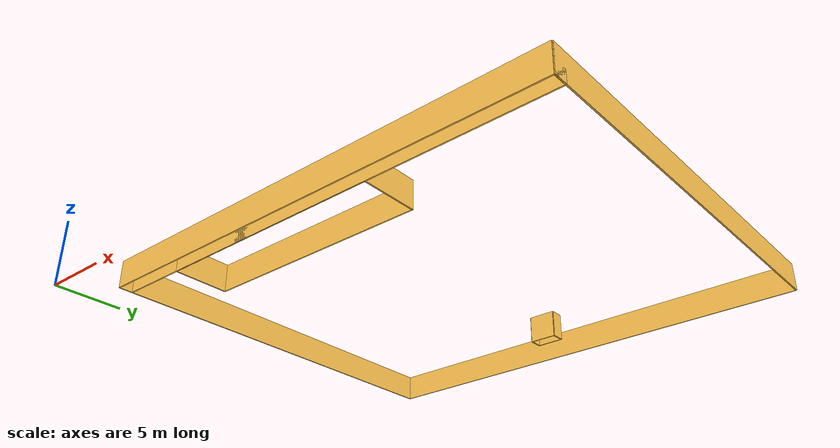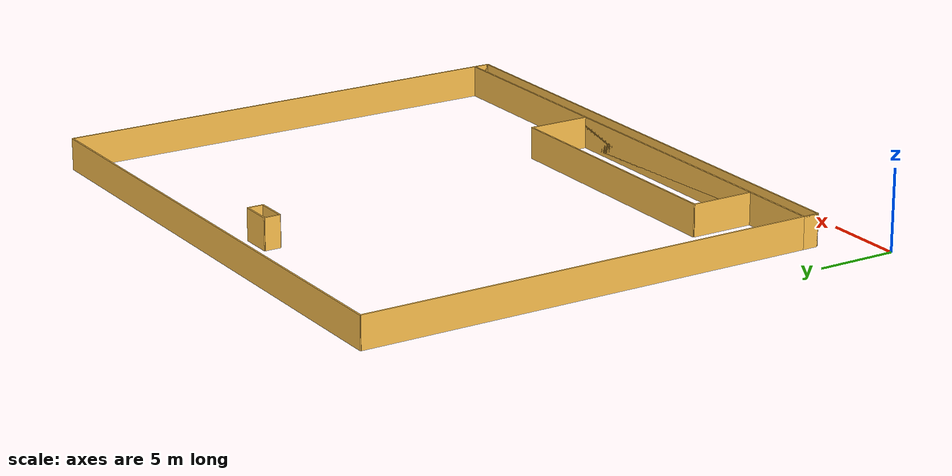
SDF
<?xml version='1.0' encoding='utf-8'?>
<sdf version="1.6">
  <model name="many_AMR">
    <static>true</static>
    <link name="wall_0">
      <pose>20.0 29.0 1.0 0 0 0.0</pose>
      <self_collide>0</self_collide>
      <kinematic>0</kinematic>
      <visual name="wall_0_visual">
        <geometry>
          <box>
            <size>2.0 0.1 2.0</size>
            </box>
          </geometry>
        <material>
          <script>
            <uri>file://media/materials/scripts/gazebo.material</uri>
            <name>Gazebo/Grey</name>
            </script>
          <ambient>1 0.764706 0.305882 1</ambient>
          <diffuse>0.7 0.7 0.7 1</diffuse>
          <specular>0.01 0.01 0.01 1</specular>
          <emissive>0 0 0 1</emissive>
          <shader type="pixel" />
          </material>
        <cast_shadows>1</cast_shadows>
        <transparency>0</transparency>
        </visual>
      <collision name="wall_0_collision">
        <geometry>
          <box>
            <size>2.0 0.1 2.0</size>
            </box>
          </geometry>
        <laser_retro>0</laser_retro>
        <max_contacts>10</max_contacts>
        <surface>
          <friction>
            <ode>
              <mu>1</mu>
              <mu2>1</mu2>
              <fdir1>0 0 0</fdir1>
              <slip1>0</slip1>
              <slip2>0</slip2>
              </ode>
            </friction>
          <bounce>
            <restitution_coefficient>0</restitution_coefficient>
            <threshold>1000000</threshold>
            </bounce>
          <contact>
            <collide_without_contact>0</collide_without_contact>
            <collide_without_contact_bitmask>1</collide_without_contact_bitmask>
            <collide_bitmask>1</collide_bitmask>
            <ode>
              <soft_cfm>0</soft_cfm>
              <soft_erp>0.2</soft_erp>
              <kp>10000000000000.0</kp>
              <kd>1</kd>
              <max_vel>0.01</max_vel>
              <min_depth>0</min_depth>
              </ode>
            <bullet>
              <split_impulse>1</split_impulse>
              <split_impulse_penetration_threshold>-0.01</split_impulse_penetration_threshold>
              <soft_cfm>0</soft_cfm>
              <soft_erp>0.2</soft_erp>
              <kp>10000000000000.0</kp>
              <kd>1</kd>
              </bullet>
            </contact>
          </surface>
        </collision>
      </link>
    <link name="wall_1">
      <pose>21.0 29.5 1.0 0 0 1.5707963267948966</pose>
      <self_collide>0</self_collide>
      <kinematic>0</kinematic>
      <visual name="wall_1_visual">
        <geometry>
          <box>
            <size>1.0 0.1 2.0</size>
            </box>
          </geometry>
        <material>
          <script>
            <uri>file://media/materials/scripts/gazebo.material</uri>
            <name>Gazebo/Grey</name>
            </script>
          <ambient>1 0.764706 0.305882 1</ambient>
          <diffuse>0.7 0.7 0.7 1</diffuse>
          <specular>0.01 0.01 0.01 1</specular>
          <emissive>0 0 0 1</emissive>
          <shader type="pixel" />
          </material>
        <cast_shadows>1</cast_shadows>
        <transparency>0</transparency>
        </visual>
      <collision name="wall_1_collision">
        <geometry>
          <box>
            <size>1.0 0.1 2.0</size>
            </box>
          </geometry>
        <laser_retro>0</laser_retro>
        <max_contacts>10</max_contacts>
        <surface>
          <friction>
            <ode>
              <mu>1</mu>
              <mu2>1</mu2>
              <fdir1>0 0 0</fdir1>
              <slip1>0</slip1>
              <slip2>0</slip2>
              </ode>
            </friction>
          <bounce>
            <restitution_coefficient>0</restitution_coefficient>
            <threshold>1000000</threshold>
            </bounce>
          <contact>
            <collide_without_contact>0</collide_without_contact>
            <collide_without_contact_bitmask>1</collide_without_contact_bitmask>
            <collide_bitmask>1</collide_bitmask>
            <ode>
              <soft_cfm>0</soft_cfm>
              <soft_erp>0.2</soft_erp>
              <kp>10000000000000.0</kp>
              <kd>1</kd>
              <max_vel>0.01</max_vel>
              <min_depth>0</min_depth>
              </ode>
            <bullet>
              <split_impulse>1</split_impulse>
              <split_impulse_penetration_threshold>-0.01</split_impulse_penetration_threshold>
              <soft_cfm>0</soft_cfm>
              <soft_erp>0.2</soft_erp>
              <kp>10000000000000.0</kp>
              <kd>1</kd>
              </bullet>
            </contact>
          </surface>
        </collision>
      </link>
    <link name="wall_2">
      <pose>20.0 30.0 1.0 0 0 3.141592653589793</pose>
      <self_collide>0</self_collide>
      <kinematic>0</kinematic>
      <visual name="wall_2_visual">
        <geometry>
          <box>
            <size>2.0 0.1 2.0</size>
            </box>
          </geometry>
        <material>
          <script>
            <uri>file://media/materials/scripts/gazebo.material</uri>
            <name>Gazebo/Grey</name>
            </script>
          <ambient>1 0.764706 0.305882 1</ambient>
          <diffuse>0.7 0.7 0.7 1</diffuse>
          <specular>0.01 0.01 0.01 1</specular>
          <emissive>0 0 0 1</emissive>
          <shader type="pixel" />
          </material>
        <cast_shadows>1</cast_shadows>
        <transparency>0</transparency>
        </visual>
      <collision name="wall_2_collision">
        <geometry>
          <box>
            <size>2.0 0.1 2.0</size>
            </box>
          </geometry>
        <laser_retro>0</laser_retro>
        <max_contacts>10</max_contacts>
        <surface>
          <friction>
            <ode>
              <mu>1</mu>
              <mu2>1</mu2>
              <fdir1>0 0 0</fdir1>
              <slip1>0</slip1>
              <slip2>0</slip2>
              </ode>
            </friction>
          <bounce>
            <restitution_coefficient>0</restitution_coefficient>
            <threshold>1000000</threshold>
            </bounce>
          <contact>
            <collide_without_contact>0</collide_without_contact>
            <collide_without_contact_bitmask>1</collide_without_contact_bitmask>
            <collide_bitmask>1</collide_bitmask>
            <ode>
              <soft_cfm>0</soft_cfm>
              <soft_erp>0.2</soft_erp>
              <kp>10000000000000.0</kp>
              <kd>1</kd>
              <max_vel>0.01</max_vel>
              <min_depth>0</min_depth>
              </ode>
            <bullet>
              <split_impulse>1</split_impulse>
              <split_impulse_penetration_threshold>-0.01</split_impulse_penetration_threshold>
              <soft_cfm>0</soft_cfm>
              <soft_erp>0.2</soft_erp>
              <kp>10000000000000.0</kp>
              <kd>1</kd>
              </bullet>
            </contact>
          </surface>
        </collision>
      </link>
    <link name="wall_3">
      <pose>19.0 29.5 1.0 0 0 -1.5707963267948966</pose>
      <self_collide>0</self_collide>
      <kinematic>0</kinematic>
      <visual name="wall_3_visual">
        <geometry>
          <box>
            <size>1.0 0.1 2.0</size>
            </box>
          </geometry>
        <material>
          <script>
            <uri>file://media/materials/scripts/gazebo.material</uri>
            <name>Gazebo/Grey</name>
            </script>
          <ambient>1 0.764706 0.305882 1</ambient>
          <diffuse>0.7 0.7 0.7 1</diffuse>
          <specular>0.01 0.01 0.01 1</specular>
          <emissive>0 0 0 1</emissive>
          <shader type="pixel" />
          </material>
        <cast_shadows>1</cast_shadows>
        <transparency>0</transparency>
        </visual>
      <collision name="wall_3_collision">
        <geometry>
          <box>
            <size>1.0 0.1 2.0</size>
            </box>
          </geometry>
        <laser_retro>0</laser_retro>
        <max_contacts>10</max_contacts>
        <surface>
          <friction>
            <ode>
              <mu>1</mu>
              <mu2>1</mu2>
              <fdir1>0 0 0</fdir1>
              <slip1>0</slip1>
              <slip2>0</slip2>
              </ode>
            </friction>
          <bounce>
            <restitution_coefficient>0</restitution_coefficient>
            <threshold>1000000</threshold>
            </bounce>
          <contact>
            <collide_without_contact>0</collide_without_contact>
            <collide_without_contact_bitmask>1</collide_without_contact_bitmask>
            <collide_bitmask>1</collide_bitmask>
            <ode>
              <soft_cfm>0</soft_cfm>
              <soft_erp>0.2</soft_erp>
              <kp>10000000000000.0</kp>
              <kd>1</kd>
              <max_vel>0.01</max_vel>
              <min_depth>0</min_depth>
              </ode>
            <bullet>
              <split_impulse>1</split_impulse>
              <split_impulse_penetration_threshold>-0.01</split_impulse_penetration_threshold>
              <soft_cfm>0</soft_cfm>
              <soft_erp>0.2</soft_erp>
              <kp>10000000000000.0</kp>
              <kd>1</kd>
              </bullet>
            </contact>
          </surface>
        </collision>
      </link>
    <link name="wall_4">
      <pose>20.5 3.0 1.0 0 0 0.0</pose>
      <self_collide>0</self_collide>
      <kinematic>0</kinematic>
      <visual name="wall_4_visual">
        <geometry>
          <box>
            <size>35.0 0.1 2.0</size>
            </box>
          </geometry>
        <material>
          <script>
            <uri>file://media/materials/scripts/gazebo.material</uri>
            <name>Gazebo/Grey</name>
            </script>
          <ambient>1 0.764706 0.305882 1</ambient>
          <diffuse>0.7 0.7 0.7 1</diffuse>
          <specular>0.01 0.01 0.01 1</specular>
          <emissive>0 0 0 1</emissive>
          <shader type="pixel" />
          </material>
        <cast_shadows>1</cast_shadows>
        <transparency>0</transparency>
        </visual>
      <collision name="wall_4_collision">
        <geometry>
          <box>
            <size>35.0 0.1 2.0</size>
            </box>
          </geometry>
        <laser_retro>0</laser_retro>
        <max_contacts>10</max_contacts>
        <surface>
          <friction>
            <ode>
              <mu>1</mu>
              <mu2>1</mu2>
              <fdir1>0 0 0</fdir1>
              <slip1>0</slip1>
              <slip2>0</slip2>
              </ode>
            </friction>
          <bounce>
            <restitution_coefficient>0</restitution_coefficient>
            <threshold>1000000</threshold>
            </bounce>
          <contact>
            <collide_without_contact>0</collide_without_contact>
            <collide_without_contact_bitmask>1</collide_without_contact_bitmask>
            <collide_bitmask>1</collide_bitmask>
            <ode>
              <soft_cfm>0</soft_cfm>
              <soft_erp>0.2</soft_erp>
              <kp>10000000000000.0</kp>
              <kd>1</kd>
              <max_vel>0.01</max_vel>
              <min_depth>0</min_depth>
              </ode>
            <bullet>
              <split_impulse>1</split_impulse>
              <split_impulse_penetration_threshold>-0.01</split_impulse_penetration_threshold>
              <soft_cfm>0</soft_cfm>
              <soft_erp>0.2</soft_erp>
              <kp>10000000000000.0</kp>
              <kd>1</kd>
              </bullet>
            </contact>
          </surface>
        </collision>
      </link>
    <link name="wall_5">
      <pose>38.0 3.5 1.0 0 0 1.5707963267948966</pose>
      <self_collide>0</self_collide>
      <kinematic>0</kinematic>
      <visual name="wall_5_visual">
        <geometry>
          <box>
            <size>1.0 0.1 2.0</size>
            </box>
          </geometry>
        <material>
          <script>
            <uri>file://media/materials/scripts/gazebo.material</uri>
            <name>Gazebo/Grey</name>
            </script>
          <ambient>1 0.764706 0.305882 1</ambient>
          <diffuse>0.7 0.7 0.7 1</diffuse>
          <specular>0.01 0.01 0.01 1</specular>
          <emissive>0 0 0 1</emissive>
          <shader type="pixel" />
          </material>
        <cast_shadows>1</cast_shadows>
        <transparency>0</transparency>
        </visual>
      <collision name="wall_5_collision">
        <geometry>
          <box>
            <size>1.0 0.1 2.0</size>
            </box>
          </geometry>
        <laser_retro>0</laser_retro>
        <max_contacts>10</max_contacts>
        <surface>
          <friction>
            <ode>
              <mu>1</mu>
              <mu2>1</mu2>
              <fdir1>0 0 0</fdir1>
              <slip1>0</slip1>
              <slip2>0</slip2>
              </ode>
            </friction>
          <bounce>
            <restitution_coefficient>0</restitution_coefficient>
            <threshold>1000000</threshold>
            </bounce>
          <contact>
            <collide_without_contact>0</collide_without_contact>
            <collide_without_contact_bitmask>1</collide_without_contact_bitmask>
            <collide_bitmask>1</collide_bitmask>
            <ode>
              <soft_cfm>0</soft_cfm>
              <soft_erp>0.2</soft_erp>
              <kp>10000000000000.0</kp>
              <kd>1</kd>
              <max_vel>0.01</max_vel>
              <min_depth>0</min_depth>
              </ode>
            <bullet>
              <split_impulse>1</split_impulse>
              <split_impulse_penetration_threshold>-0.01</split_impulse_penetration_threshold>
              <soft_cfm>0</soft_cfm>
              <soft_erp>0.2</soft_erp>
              <kp>10000000000000.0</kp>
              <kd>1</kd>
              </bullet>
            </contact>
          </surface>
        </collision>
      </link>
    <link name="wall_6">
      <pose>20.5 4.0 1.0 0 0 3.141592653589793</pose>
      <self_collide>0</self_collide>
      <kinematic>0</kinematic>
      <visual name="wall_6_visual">
        <geometry>
          <box>
            <size>35.0 0.1 2.0</size>
            </box>
          </geometry>
        <material>
          <script>
            <uri>file://media/materials/scripts/gazebo.material</uri>
            <name>Gazebo/Grey</name>
            </script>
          <ambient>1 0.764706 0.305882 1</ambient>
          <diffuse>0.7 0.7 0.7 1</diffuse>
          <specular>0.01 0.01 0.01 1</specular>
          <emissive>0 0 0 1</emissive>
          <shader type="pixel" />
          </material>
        <cast_shadows>1</cast_shadows>
        <transparency>0</transparency>
        </visual>
      <collision name="wall_6_collision">
        <geometry>
          <box>
            <size>35.0 0.1 2.0</size>
            </box>
          </geometry>
        <laser_retro>0</laser_retro>
        <max_contacts>10</max_contacts>
        <surface>
          <friction>
            <ode>
              <mu>1</mu>
              <mu2>1</mu2>
              <fdir1>0 0 0</fdir1>
              <slip1>0</slip1>
              <slip2>0</slip2>
              </ode>
            </friction>
          <bounce>
            <restitution_coefficient>0</restitution_coefficient>
            <threshold>1000000</threshold>
            </bounce>
          <contact>
            <collide_without_contact>0</collide_without_contact>
            <collide_without_contact_bitmask>1</collide_without_contact_bitmask>
            <collide_bitmask>1</collide_bitmask>
            <ode>
              <soft_cfm>0</soft_cfm>
              <soft_erp>0.2</soft_erp>
              <kp>10000000000000.0</kp>
              <kd>1</kd>
              <max_vel>0.01</max_vel>
              <min_depth>0</min_depth>
              </ode>
            <bullet>
              <split_impulse>1</split_impulse>
              <split_impulse_penetration_threshold>-0.01</split_impulse_penetration_threshold>
              <soft_cfm>0</soft_cfm>
              <soft_erp>0.2</soft_erp>
              <kp>10000000000000.0</kp>
              <kd>1</kd>
              </bullet>
            </contact>
          </surface>
        </collision>
      </link>
    <link name="wall_7">
      <pose>3.0 3.5 1.0 0 0 -1.5707963267948966</pose>
      <self_collide>0</self_collide>
      <kinematic>0</kinematic>
      <visual name="wall_7_visual">
        <geometry>
          <box>
            <size>1.0 0.1 2.0</size>
            </box>
          </geometry>
        <material>
          <script>
            <uri>file://media/materials/scripts/gazebo.material</uri>
            <name>Gazebo/Grey</name>
            </script>
          <ambient>1 0.764706 0.305882 1</ambient>
          <diffuse>0.7 0.7 0.7 1</diffuse>
          <specular>0.01 0.01 0.01 1</specular>
          <emissive>0 0 0 1</emissive>
          <shader type="pixel" />
          </material>
        <cast_shadows>1</cast_shadows>
        <transparency>0</transparency>
        </visual>
      <collision name="wall_7_collision">
        <geometry>
          <box>
            <size>1.0 0.1 2.0</size>
            </box>
          </geometry>
        <laser_retro>0</laser_retro>
        <max_contacts>10</max_contacts>
        <surface>
          <friction>
            <ode>
              <mu>1</mu>
              <mu2>1</mu2>
              <fdir1>0 0 0</fdir1>
              <slip1>0</slip1>
              <slip2>0</slip2>
              </ode>
            </friction>
          <bounce>
            <restitution_coefficient>0</restitution_coefficient>
            <threshold>1000000</threshold>
            </bounce>
          <contact>
            <collide_without_contact>0</collide_without_contact>
            <collide_without_contact_bitmask>1</collide_without_contact_bitmask>
            <collide_bitmask>1</collide_bitmask>
            <ode>
              <soft_cfm>0</soft_cfm>
              <soft_erp>0.2</soft_erp>
              <kp>10000000000000.0</kp>
              <kd>1</kd>
              <max_vel>0.01</max_vel>
              <min_depth>0</min_depth>
              </ode>
            <bullet>
              <split_impulse>1</split_impulse>
              <split_impulse_penetration_threshold>-0.01</split_impulse_penetration_threshold>
              <soft_cfm>0</soft_cfm>
              <soft_erp>0.2</soft_erp>
              <kp>10000000000000.0</kp>
              <kd>1</kd>
              </bullet>
            </contact>
          </surface>
        </collision>
      </link>
    <link name="wall_8">
      <pose>8.0 6.0 1.0 0 0 1.5707963267948966</pose>
      <self_collide>0</self_collide>
      <kinematic>0</kinematic>
      <visual name="wall_8_visual">
        <geometry>
          <box>
            <size>4.0 0.1 2.0</size>
            </box>
          </geometry>
        <material>
          <script>
            <uri>file://media/materials/scripts/gazebo.material</uri>
            <name>Gazebo/Grey</name>
            </script>
          <ambient>1 0.764706 0.305882 1</ambient>
          <diffuse>0.7 0.7 0.7 1</diffuse>
          <specular>0.01 0.01 0.01 1</specular>
          <emissive>0 0 0 1</emissive>
          <shader type="pixel" />
          </material>
        <cast_shadows>1</cast_shadows>
        <transparency>0</transparency>
        </visual>
      <collision name="wall_8_collision">
        <geometry>
          <box>
            <size>4.0 0.1 2.0</size>
            </box>
          </geometry>
        <laser_retro>0</laser_retro>
        <max_contacts>10</max_contacts>
        <surface>
          <friction>
            <ode>
              <mu>1</mu>
              <mu2>1</mu2>
              <fdir1>0 0 0</fdir1>
              <slip1>0</slip1>
              <slip2>0</slip2>
              </ode>
            </friction>
          <bounce>
            <restitution_coefficient>0</restitution_coefficient>
            <threshold>1000000</threshold>
            </bounce>
          <contact>
            <collide_without_contact>0</collide_without_contact>
            <collide_without_contact_bitmask>1</collide_without_contact_bitmask>
            <collide_bitmask>1</collide_bitmask>
            <ode>
              <soft_cfm>0</soft_cfm>
              <soft_erp>0.2</soft_erp>
              <kp>10000000000000.0</kp>
              <kd>1</kd>
              <max_vel>0.01</max_vel>
              <min_depth>0</min_depth>
              </ode>
            <bullet>
              <split_impulse>1</split_impulse>
              <split_impulse_penetration_threshold>-0.01</split_impulse_penetration_threshold>
              <soft_cfm>0</soft_cfm>
              <soft_erp>0.2</soft_erp>
              <kp>10000000000000.0</kp>
              <kd>1</kd>
              </bullet>
            </contact>
          </surface>
        </collision>
      </link>
    <link name="wall_9">
      <pose>16.5 8.0 1.0 0 0 0.0</pose>
      <self_collide>0</self_collide>
      <kinematic>0</kinematic>
      <visual name="wall_9_visual">
        <geometry>
          <box>
            <size>17.0 0.1 2.0</size>
            </box>
          </geometry>
        <material>
          <script>
            <uri>file://media/materials/scripts/gazebo.material</uri>
            <name>Gazebo/Grey</name>
            </script>
          <ambient>1 0.764706 0.305882 1</ambient>
          <diffuse>0.7 0.7 0.7 1</diffuse>
          <specular>0.01 0.01 0.01 1</specular>
          <emissive>0 0 0 1</emissive>
          <shader type="pixel" />
          </material>
        <cast_shadows>1</cast_shadows>
        <transparency>0</transparency>
        </visual>
      <collision name="wall_9_collision">
        <geometry>
          <box>
            <size>17.0 0.1 2.0</size>
            </box>
          </geometry>
        <laser_retro>0</laser_retro>
        <max_contacts>10</max_contacts>
        <surface>
          <friction>
            <ode>
              <mu>1</mu>
              <mu2>1</mu2>
              <fdir1>0 0 0</fdir1>
              <slip1>0</slip1>
              <slip2>0</slip2>
              </ode>
            </friction>
          <bounce>
            <restitution_coefficient>0</restitution_coefficient>
            <threshold>1000000</threshold>
            </bounce>
          <contact>
            <collide_without_contact>0</collide_without_contact>
            <collide_without_contact_bitmask>1</collide_without_contact_bitmask>
            <collide_bitmask>1</collide_bitmask>
            <ode>
              <soft_cfm>0</soft_cfm>
              <soft_erp>0.2</soft_erp>
              <kp>10000000000000.0</kp>
              <kd>1</kd>
              <max_vel>0.01</max_vel>
              <min_depth>0</min_depth>
              </ode>
            <bullet>
              <split_impulse>1</split_impulse>
              <split_impulse_penetration_threshold>-0.01</split_impulse_penetration_threshold>
              <soft_cfm>0</soft_cfm>
              <soft_erp>0.2</soft_erp>
              <kp>10000000000000.0</kp>
              <kd>1</kd>
              </bullet>
            </contact>
          </surface>
        </collision>
      </link>
    <link name="wall_10">
      <pose>25.0 6.0 1.0 0 0 -1.5707963267948966</pose>
      <self_collide>0</self_collide>
      <kinematic>0</kinematic>
      <visual name="wall_10_visual">
        <geometry>
          <box>
            <size>4.0 0.1 2.0</size>
            </box>
          </geometry>
        <material>
          <script>
            <uri>file://media/materials/scripts/gazebo.material</uri>
            <name>Gazebo/Grey</name>
            </script>
          <ambient>1 0.764706 0.305882 1</ambient>
          <diffuse>0.7 0.7 0.7 1</diffuse>
          <specular>0.01 0.01 0.01 1</specular>
          <emissive>0 0 0 1</emissive>
          <shader type="pixel" />
          </material>
        <cast_shadows>1</cast_shadows>
        <transparency>0</transparency>
        </visual>
      <collision name="wall_10_collision">
        <geometry>
          <box>
            <size>4.0 0.1 2.0</size>
            </box>
          </geometry>
        <laser_retro>0</laser_retro>
        <max_contacts>10</max_contacts>
        <surface>
          <friction>
            <ode>
              <mu>1</mu>
              <mu2>1</mu2>
              <fdir1>0 0 0</fdir1>
              <slip1>0</slip1>
              <slip2>0</slip2>
              </ode>
            </friction>
          <bounce>
            <restitution_coefficient>0</restitution_coefficient>
            <threshold>1000000</threshold>
            </bounce>
          <contact>
            <collide_without_contact>0</collide_without_contact>
            <collide_without_contact_bitmask>1</collide_without_contact_bitmask>
            <collide_bitmask>1</collide_bitmask>
            <ode>
              <soft_cfm>0</soft_cfm>
              <soft_erp>0.2</soft_erp>
              <kp>10000000000000.0</kp>
              <kd>1</kd>
              <max_vel>0.01</max_vel>
              <min_depth>0</min_depth>
              </ode>
            <bullet>
              <split_impulse>1</split_impulse>
              <split_impulse_penetration_threshold>-0.01</split_impulse_penetration_threshold>
              <soft_cfm>0</soft_cfm>
              <soft_erp>0.2</soft_erp>
              <kp>10000000000000.0</kp>
              <kd>1</kd>
              </bullet>
            </contact>
          </surface>
        </collision>
      </link>
    <link name="wall_11">
      <pose>16.5 4.0 1.0 0 0 3.141592653589793</pose>
      <self_collide>0</self_collide>
      <kinematic>0</kinematic>
      <visual name="wall_11_visual">
        <geometry>
          <box>
            <size>17.0 0.1 2.0</size>
            </box>
          </geometry>
        <material>
          <script>
            <uri>file://media/materials/scripts/gazebo.material</uri>
            <name>Gazebo/Grey</name>
            </script>
          <ambient>1 0.764706 0.305882 1</ambient>
          <diffuse>0.7 0.7 0.7 1</diffuse>
          <specular>0.01 0.01 0.01 1</specular>
          <emissive>0 0 0 1</emissive>
          <shader type="pixel" />
          </material>
        <cast_shadows>1</cast_shadows>
        <transparency>0</transparency>
        </visual>
      <collision name="wall_11_collision">
        <geometry>
          <box>
            <size>17.0 0.1 2.0</size>
            </box>
          </geometry>
        <laser_retro>0</laser_retro>
        <max_contacts>10</max_contacts>
        <surface>
          <friction>
            <ode>
              <mu>1</mu>
              <mu2>1</mu2>
              <fdir1>0 0 0</fdir1>
              <slip1>0</slip1>
              <slip2>0</slip2>
              </ode>
            </friction>
          <bounce>
            <restitution_coefficient>0</restitution_coefficient>
            <threshold>1000000</threshold>
            </bounce>
          <contact>
            <collide_without_contact>0</collide_without_contact>
            <collide_without_contact_bitmask>1</collide_without_contact_bitmask>
            <collide_bitmask>1</collide_bitmask>
            <ode>
              <soft_cfm>0</soft_cfm>
              <soft_erp>0.2</soft_erp>
              <kp>10000000000000.0</kp>
              <kd>1</kd>
              <max_vel>0.01</max_vel>
              <min_depth>0</min_depth>
              </ode>
            <bullet>
              <split_impulse>1</split_impulse>
              <split_impulse_penetration_threshold>-0.01</split_impulse_penetration_threshold>
              <soft_cfm>0</soft_cfm>
              <soft_erp>0.2</soft_erp>
              <kp>10000000000000.0</kp>
              <kd>1</kd>
              </bullet>
            </contact>
          </surface>
        </collision>
      </link>
    <link name="wall_12">
      <pose>20.5 3.0 1.0 0 0 0.0</pose>
      <self_collide>0</self_collide>
      <kinematic>0</kinematic>
      <visual name="wall_12_visual">
        <geometry>
          <box>
            <size>35.0 0.1 2.0</size>
            </box>
          </geometry>
        <material>
          <script>
            <uri>file://media/materials/scripts/gazebo.material</uri>
            <name>Gazebo/Grey</name>
            </script>
          <ambient>1 0.764706 0.305882 1</ambient>
          <diffuse>0.7 0.7 0.7 1</diffuse>
          <specular>0.01 0.01 0.01 1</specular>
          <emissive>0 0 0 1</emissive>
          <shader type="pixel" />
          </material>
        <cast_shadows>1</cast_shadows>
        <transparency>0</transparency>
        </visual>
      <collision name="wall_12_collision">
        <geometry>
          <box>
            <size>35.0 0.1 2.0</size>
            </box>
          </geometry>
        <laser_retro>0</laser_retro>
        <max_contacts>10</max_contacts>
        <surface>
          <friction>
            <ode>
              <mu>1</mu>
              <mu2>1</mu2>
              <fdir1>0 0 0</fdir1>
              <slip1>0</slip1>
              <slip2>0</slip2>
              </ode>
            </friction>
          <bounce>
            <restitution_coefficient>0</restitution_coefficient>
            <threshold>1000000</threshold>
            </bounce>
          <contact>
            <collide_without_contact>0</collide_without_contact>
            <collide_without_contact_bitmask>1</collide_without_contact_bitmask>
            <collide_bitmask>1</collide_bitmask>
            <ode>
              <soft_cfm>0</soft_cfm>
              <soft_erp>0.2</soft_erp>
              <kp>10000000000000.0</kp>
              <kd>1</kd>
              <max_vel>0.01</max_vel>
              <min_depth>0</min_depth>
              </ode>
            <bullet>
              <split_impulse>1</split_impulse>
              <split_impulse_penetration_threshold>-0.01</split_impulse_penetration_threshold>
              <soft_cfm>0</soft_cfm>
              <soft_erp>0.2</soft_erp>
              <kp>10000000000000.0</kp>
              <kd>1</kd>
              </bullet>
            </contact>
          </surface>
        </collision>
      </link>
    <link name="wall_13">
      <pose>38.0 18.0 1.0 0 0 1.5707963267948966</pose>
      <self_collide>0</self_collide>
      <kinematic>0</kinematic>
      <visual name="wall_13_visual">
        <geometry>
          <box>
            <size>30.0 0.1 2.0</size>
            </box>
          </geometry>
        <material>
          <script>
            <uri>file://media/materials/scripts/gazebo.material</uri>
            <name>Gazebo/Grey</name>
            </script>
          <ambient>1 0.764706 0.305882 1</ambient>
          <diffuse>0.7 0.7 0.7 1</diffuse>
          <specular>0.01 0.01 0.01 1</specular>
          <emissive>0 0 0 1</emissive>
          <shader type="pixel" />
          </material>
        <cast_shadows>1</cast_shadows>
        <transparency>0</transparency>
        </visual>
      <collision name="wall_13_collision">
        <geometry>
          <box>
            <size>30.0 0.1 2.0</size>
            </box>
          </geometry>
        <laser_retro>0</laser_retro>
        <max_contacts>10</max_contacts>
        <surface>
          <friction>
            <ode>
              <mu>1</mu>
              <mu2>1</mu2>
              <fdir1>0 0 0</fdir1>
              <slip1>0</slip1>
              <slip2>0</slip2>
              </ode>
            </friction>
          <bounce>
            <restitution_coefficient>0</restitution_coefficient>
            <threshold>1000000</threshold>
            </bounce>
          <contact>
            <collide_without_contact>0</collide_without_contact>
            <collide_without_contact_bitmask>1</collide_without_contact_bitmask>
            <collide_bitmask>1</collide_bitmask>
            <ode>
              <soft_cfm>0</soft_cfm>
              <soft_erp>0.2</soft_erp>
              <kp>10000000000000.0</kp>
              <kd>1</kd>
              <max_vel>0.01</max_vel>
              <min_depth>0</min_depth>
              </ode>
            <bullet>
              <split_impulse>1</split_impulse>
              <split_impulse_penetration_threshold>-0.01</split_impulse_penetration_threshold>
              <soft_cfm>0</soft_cfm>
              <soft_erp>0.2</soft_erp>
              <kp>10000000000000.0</kp>
              <kd>1</kd>
              </bullet>
            </contact>
          </surface>
        </collision>
      </link>
    <link name="wall_14">
      <pose>20.5 33.0 1.0 0 0 3.141592653589793</pose>
      <self_collide>0</self_collide>
      <kinematic>0</kinematic>
      <visual name="wall_14_visual">
        <geometry>
          <box>
            <size>35.0 0.1 2.0</size>
            </box>
          </geometry>
        <material>
          <script>
            <uri>file://media/materials/scripts/gazebo.material</uri>
            <name>Gazebo/Grey</name>
            </script>
          <ambient>1 0.764706 0.305882 1</ambient>
          <diffuse>0.7 0.7 0.7 1</diffuse>
          <specular>0.01 0.01 0.01 1</specular>
          <emissive>0 0 0 1</emissive>
          <shader type="pixel" />
          </material>
        <cast_shadows>1</cast_shadows>
        <transparency>0</transparency>
        </visual>
      <collision name="wall_14_collision">
        <geometry>
          <box>
            <size>35.0 0.1 2.0</size>
            </box>
          </geometry>
        <laser_retro>0</laser_retro>
        <max_contacts>10</max_contacts>
        <surface>
          <friction>
            <ode>
              <mu>1</mu>
              <mu2>1</mu2>
              <fdir1>0 0 0</fdir1>
              <slip1>0</slip1>
              <slip2>0</slip2>
              </ode>
            </friction>
          <bounce>
            <restitution_coefficient>0</restitution_coefficient>
            <threshold>1000000</threshold>
            </bounce>
          <contact>
            <collide_without_contact>0</collide_without_contact>
            <collide_without_contact_bitmask>1</collide_without_contact_bitmask>
            <collide_bitmask>1</collide_bitmask>
            <ode>
              <soft_cfm>0</soft_cfm>
              <soft_erp>0.2</soft_erp>
              <kp>10000000000000.0</kp>
              <kd>1</kd>
              <max_vel>0.01</max_vel>
              <min_depth>0</min_depth>
              </ode>
            <bullet>
              <split_impulse>1</split_impulse>
              <split_impulse_penetration_threshold>-0.01</split_impulse_penetration_threshold>
              <soft_cfm>0</soft_cfm>
              <soft_erp>0.2</soft_erp>
              <kp>10000000000000.0</kp>
              <kd>1</kd>
              </bullet>
            </contact>
          </surface>
        </collision>
      </link>
    <link name="wall_15">
      <pose>3.0 18.0 1.0 0 0 -1.5707963267948966</pose>
      <self_collide>0</self_collide>
      <kinematic>0</kinematic>
      <visual name="wall_15_visual">
        <geometry>
          <box>
            <size>30.0 0.1 2.0</size>
            </box>
          </geometry>
        <material>
          <script>
            <uri>file://media/materials/scripts/gazebo.material</uri>
            <name>Gazebo/Grey</name>
            </script>
          <ambient>1 0.764706 0.305882 1</ambient>
          <diffuse>0.7 0.7 0.7 1</diffuse>
          <specular>0.01 0.01 0.01 1</specular>
          <emissive>0 0 0 1</emissive>
          <shader type="pixel" />
          </material>
        <cast_shadows>1</cast_shadows>
        <transparency>0</transparency>
        </visual>
      <collision name="wall_15_collision">
        <geometry>
          <box>
            <size>30.0 0.1 2.0</size>
            </box>
          </geometry>
        <laser_retro>0</laser_retro>
        <max_contacts>10</max_contacts>
        <surface>
          <friction>
            <ode>
              <mu>1</mu>
              <mu2>1</mu2>
              <fdir1>0 0 0</fdir1>
              <slip1>0</slip1>
              <slip2>0</slip2>
              </ode>
            </friction>
          <bounce>
            <restitution_coefficient>0</restitution_coefficient>
            <threshold>1000000</threshold>
            </bounce>
          <contact>
            <collide_without_contact>0</collide_without_contact>
            <collide_without_contact_bitmask>1</collide_without_contact_bitmask>
            <collide_bitmask>1</collide_bitmask>
            <ode>
              <soft_cfm>0</soft_cfm>
              <soft_erp>0.2</soft_erp>
              <kp>10000000000000.0</kp>
              <kd>1</kd>
              <max_vel>0.01</max_vel>
              <min_depth>0</min_depth>
              </ode>
            <bullet>
              <split_impulse>1</split_impulse>
              <split_impulse_penetration_threshold>-0.01</split_impulse_penetration_threshold>
              <soft_cfm>0</soft_cfm>
              <soft_erp>0.2</soft_erp>
              <kp>10000000000000.0</kp>
              <kd>1</kd>
              </bullet>
            </contact>
          </surface>
        </collision>
      </link>
    </model>
  </sdf>
